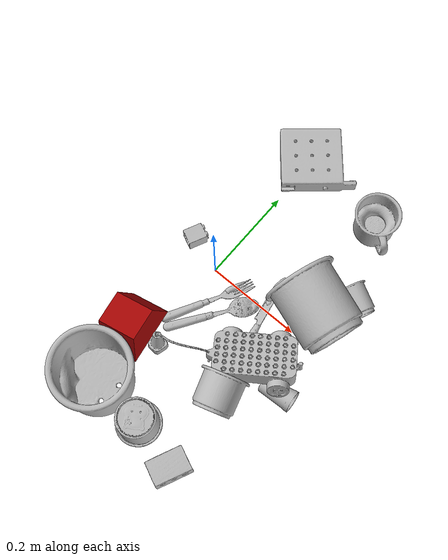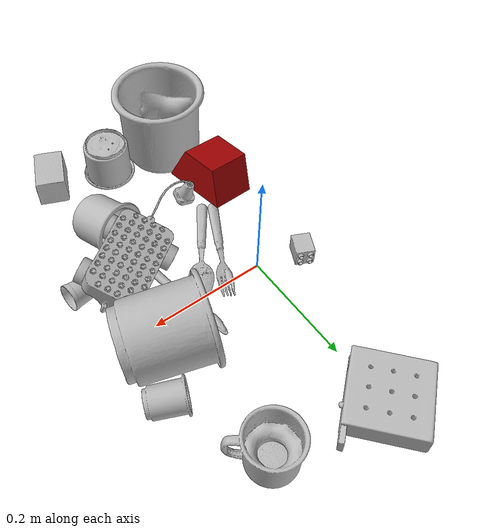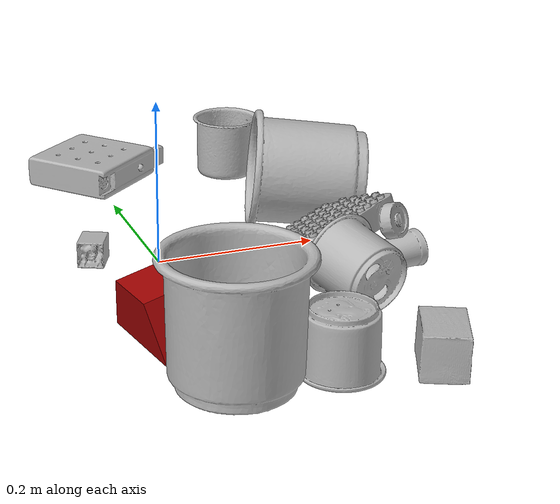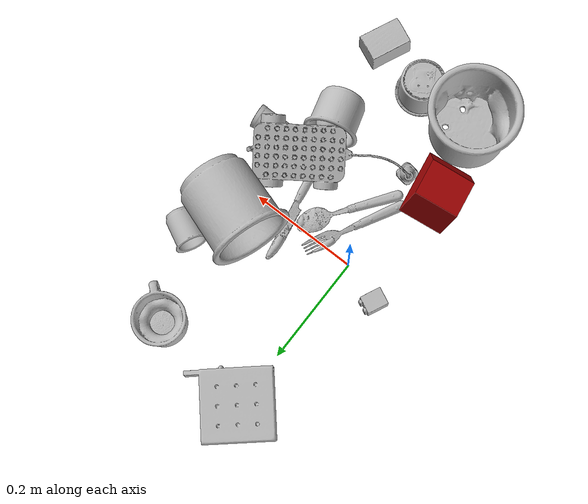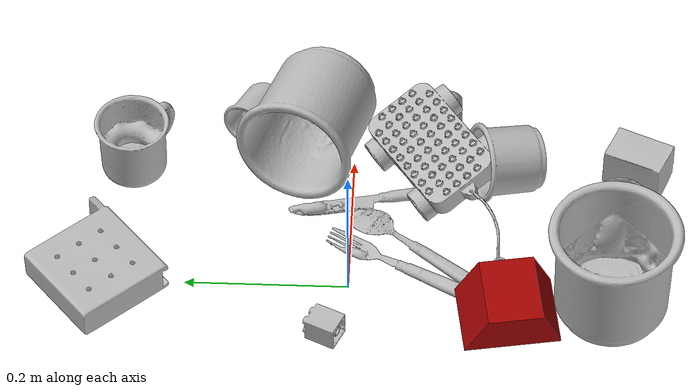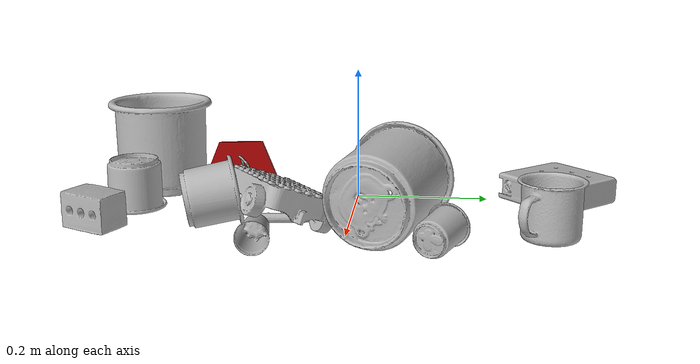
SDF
<sdf version="1.4">
  <world name="default">
    <light name="light1" type="point">
      <pose>0 0 1 0 0 0</pose>
      <diffuse>3 3 3 1</diffuse>
      <specular>3 3 3 1</specular>
    </light>
    <light name="light2" type="point">
      <pose>0 0.5 2 0 0 0</pose>
      <diffuse>1 1 1 1</diffuse>
      <specular>1 1 1 1</specular>
    </light>
    <light name="light3" type="point">
      <pose>0 0.5 2 0 0 0</pose>
      <diffuse>3 3 3 1</diffuse>
      <specular>3 3 3 1</specular>
    </light>
    <scene>
      <ambient>0.7 0.7 0.7</ambient>
    </scene>
    <model name="cup1">
      <link name="link_cup1">
        <collision name="default">
          <geometry>
            <mesh>
              <uri>model://i_cups/collision_meshes/collision.obj</uri>
              <scale>1.0 1.0 1.0</scale>
            </mesh>
          </geometry>
          <surface>
            <friction>
              <ode>
                <mu>0.5</mu>
                <mu2>0.5</mu2>
              </ode>
            </friction>
          <contact>
        <ode>
            <max_vel>0</max_vel>
            <min_depth>0.0001</min_depth>
            <kp>1e8</kp>
        </ode>
    </contact></surface>
        </collision>
        <visual name="default">
          <geometry>
            <mesh>
              <uri>model://i_cups/visual_meshes/visual.dae</uri>
              <scale>1.0 1.0 1.0</scale>
            </mesh>
          </geometry>
        </visual>
        <inertial>
          <mass>0.06118306145071983</mass>
          <pose>0.00011240330786677077 0.00016797454736661166 -0.0008579033892601728 -0.02898356853937009 -0.0398729445813228 -0.3459020996231002</pose>
          <inertia>
            <ixx>8.470886e-05</ixx>
            <iyy>8.5455235e-05</iyy>
            <izz>9.467588e-05</izz>
            <ixy>0</ixy>
            <ixz>0</ixz>
            <iyz>0</iyz>
          </inertia>
        </inertial>
      </link>
      <pose>0.1742555946111679 -0.19119006395339966 0.045974839478731155 -1.3533119203674542 0.7189179590360907 0.44686069858942584</pose>
    </model>
    <model name="silverware1">
      <link name="link_silverware1">
        <collision name="default">
          <geometry>
            <mesh>
              <uri>model://fork/collision_meshes/collision.obj</uri>
              <scale>1.0 1.0 1.0</scale>
            </mesh>
          </geometry>
          <surface>
            <friction>
              <ode>
                <mu>0.5</mu>
                <mu2>0.5</mu2>
              </ode>
            </friction>
          <contact>
        <ode>
            <max_vel>0</max_vel>
            <min_depth>0.0001</min_depth>
            <kp>1e8</kp>
        </ode>
    </contact></surface>
        </collision>
        <visual name="default">
          <geometry>
            <mesh>
              <uri>model://fork/visual_meshes/visual.dae</uri>
              <scale>1.0 1.0 1.0</scale>
            </mesh>
          </geometry>
        </visual>
        <inertial>
          <mass>0.031184576451778412</mass>
          <pose>-0.02957005426287651 0.00046588247641921043 0.0003218861820641905 -0.013551007459636681 -0.010977840933376642 0.014453907264632249</pose>
          <inertia>
            <ixx>1.0931959e-06</ixx>
            <iyy>8.1413935e-05</iyy>
            <izz>8.1902916e-05</izz>
            <ixy>0</ixy>
            <ixz>0</ixz>
            <iyz>0</iyz>
          </inertia>
        </inertial>
      </link>
      <pose>0.03302336856722832 -0.06125112622976303 0.005697718821465969 -0.17802686889973823 0.02535435743725021 1.0856482575754152</pose>
    </model>
    <model name="cup2">
      <link name="link_cup2">
        <collision name="default">
          <geometry>
            <mesh>
              <uri>model://cup_small/collision_meshes/collision.obj</uri>
              <scale>1.0 1.0 1.0</scale>
            </mesh>
          </geometry>
          <surface>
            <friction>
              <ode>
                <mu>0.5</mu>
                <mu2>0.5</mu2>
              </ode>
            </friction>
          <contact>
        <ode>
            <max_vel>0</max_vel>
            <min_depth>0.0001</min_depth>
            <kp>1e8</kp>
        </ode>
    </contact></surface>
        </collision>
        <visual name="default">
          <geometry>
            <mesh>
              <uri>model://cup_small/visual_meshes/visual.dae</uri>
              <scale>1.0 1.0 1.0</scale>
            </mesh>
          </geometry>
        </visual>
        <inertial>
          <mass>0.03407767415046692</mass>
          <pose>0.0001048250705935061 -0.00033778452780097723 -0.010742825455963612 -0.011493231776776816 -0.015280154496379641 -0.5058119732839097</pose>
          <inertia>
            <ixx>2.0064415e-05</ixx>
            <iyy>2.0167918e-05</iyy>
            <izz>9.059144e-06</izz>
            <ixy>0</ixy>
            <ixz>0</ixz>
            <iyz>0</iyz>
          </inertia>
        </inertial>
      </link>
      <pose>0.25632235407829285 -0.11410415172576904 0.02026931568980217 1.4313426765581765 -1.0202845865916228 1.8015491793434097</pose>
    </model>
    <model name="silverware2">
      <link name="link_silverware2">
        <collision name="default">
          <geometry>
            <mesh>
              <uri>model://spoon/collision_meshes/collision.obj</uri>
              <scale>1.0 1.0 1.0</scale>
            </mesh>
          </geometry>
          <surface>
            <friction>
              <ode>
                <mu>0.5</mu>
                <mu2>0.5</mu2>
              </ode>
            </friction>
          <contact>
        <ode>
            <max_vel>0</max_vel>
            <min_depth>0.0001</min_depth>
            <kp>1e8</kp>
        </ode>
    </contact></surface>
        </collision>
        <visual name="default">
          <geometry>
            <mesh>
              <uri>model://spoon/visual_meshes/visual.dae</uri>
              <scale>1.0 1.0 1.0</scale>
            </mesh>
          </geometry>
        </visual>
        <inertial>
          <mass>0.016614587977528572</mass>
          <pose>-0.005526317749172449 -0.0016034182626754045 -0.0007271657232195139 0.03521671066550848 -0.039065848782153245 0.0061506117821598484</pose>
          <inertia>
            <ixx>9.241303e-07</ixx>
            <iyy>6.321795e-05</iyy>
            <izz>6.367369e-05</izz>
            <ixy>0</ixy>
            <ixz>0</ixz>
            <iyz>0</iyz>
          </inertia>
        </inertial>
      </link>
      <pose>0.060312796384096146 -0.0788499116897583 0.010133782401680946 3.1049274108577882 -0.06197637865266806 0.9612691751548706</pose>
    </model>
    <model name="cup3">
      <link name="link_cup3">
        <collision name="default">
          <geometry>
            <mesh>
              <uri>model://mug/collision_meshes/collision.obj</uri>
              <scale>1.0 1.0 1.0</scale>
            </mesh>
          </geometry>
          <surface>
            <friction>
              <ode>
                <mu>0.5</mu>
                <mu2>0.5</mu2>
              </ode>
            </friction>
          <contact>
        <ode>
            <max_vel>0</max_vel>
            <min_depth>0.0001</min_depth>
            <kp>1e8</kp>
        </ode>
    </contact></surface>
        </collision>
        <visual name="default">
          <geometry>
            <mesh>
              <uri>model://mug/visual_meshes/visual.dae</uri>
              <scale>1.0 1.0 1.0</scale>
            </mesh>
          </geometry>
        </visual>
        <inertial>
          <mass>0.2187051922082901</mass>
          <pose>0.009571668691933155 0.0008143252925947309 -0.0109473317861557 -0.1298317614392908 0.08737757629698793 0.05507296169044089</pose>
          <inertia>
            <ixx>0.00021724429</ixx>
            <iyy>0.00024264908</iyy>
            <izz>0.00028062687</izz>
            <ixy>0</ixy>
            <ixz>0</ixz>
            <iyz>0</iyz>
          </inertia>
        </inertial>
      </link>
      <pose>0.19638314843177795 0.26887062191963196 0.04094903916120529 -8.892811109072792e-07 1.5702500083383604e-06 2.4368037427812577</pose>
    </model>
    <model name="silverware3">
      <link name="link_silverware3">
        <collision name="default">
          <geometry>
            <mesh>
              <uri>model://knife/collision_meshes/collision.obj</uri>
              <scale>1.0 1.0 1.0</scale>
            </mesh>
          </geometry>
          <surface>
            <friction>
              <ode>
                <mu>0.5</mu>
                <mu2>0.5</mu2>
              </ode>
            </friction>
          <contact>
        <ode>
            <max_vel>0</max_vel>
            <min_depth>0.0001</min_depth>
            <kp>1e8</kp>
        </ode>
    </contact></surface>
        </collision>
        <visual name="default">
          <geometry>
            <mesh>
              <uri>model://knife/visual_meshes/visual.dae</uri>
              <scale>1.0 1.0 1.0</scale>
            </mesh>
          </geometry>
        </visual>
        <inertial>
          <mass>0.02527560666203499</mass>
          <pose>-0.02378525398671627 0.0015275124460458755 5.062016498413868e-05 0.07305987488321217 0.01724841707462807 -0.007409821427235137</pose>
          <inertia>
            <ixx>7.174241e-07</ixx>
            <iyy>9.710476e-05</iyy>
            <izz>9.733581e-05</izz>
            <ixy>0</ixy>
            <ixz>0</ixz>
            <iyz>0</iyz>
          </inertia>
        </inertial>
      </link>
      <pose>0.13583868741989136 -0.027305282652378082 0.005810708738863468 2.889354054606812 0.02591460207233418 1.7600358473713342</pose>
    </model>
    <model name="cup4">
      <link name="link_cup4">
        <collision name="default">
          <geometry>
            <mesh>
              <uri>model://f_cups/collision_meshes/collision.obj</uri>
              <scale>2.0 2.0 2.0</scale>
            </mesh>
          </geometry>
          <surface>
            <friction>
              <ode>
                <mu>0.5</mu>
                <mu2>0.5</mu2>
              </ode>
            </friction>
          <contact>
        <ode>
            <max_vel>0</max_vel>
            <min_depth>0.0001</min_depth>
            <kp>1e8</kp>
        </ode>
    </contact></surface>
        </collision>
        <visual name="default">
          <geometry>
            <mesh>
              <uri>model://f_cups/visual_meshes/visual.dae</uri>
              <scale>2.0 2.0 2.0</scale>
            </mesh>
          </geometry>
        </visual>
        <inertial>
          <mass>0.45639780163764954</mass>
          <pose>-0.006342936772853136 -0.0012480145087465644 -0.007311072666198015 0.7862311529960513 -0.2607925047248709 -0.18237200478465204</pose>
          <inertia>
            <ixx>0.0017161043</ixx>
            <iyy>0.0018002132</iyy>
            <izz>0.0018740727</izz>
            <ixy>0</ixy>
            <ixz>0</ixz>
            <iyz>0</iyz>
          </inertia>
        </inertial>
      </link>
      <pose>-0.01861448958516121 -0.31905901432037354 0.07261094450950623 5.060996989196341e-05 -2.376373477342469e-05 0.8102713660166986</pose>
    </model>
    <model name="cup41">
      <link name="link_cup41">
        <collision name="default">
          <geometry>
            <mesh>
              <uri>model://b_cups/collision_meshes/collision.obj</uri>
              <scale>1.0 1.0 1.0</scale>
            </mesh>
          </geometry>
          <surface>
            <friction>
              <ode>
                <mu>0.5</mu>
                <mu2>0.5</mu2>
              </ode>
            </friction>
          <contact>
        <ode>
            <max_vel>0</max_vel>
            <min_depth>0.0001</min_depth>
            <kp>1e8</kp>
        </ode>
    </contact></surface>
        </collision>
        <visual name="default">
          <geometry>
            <mesh>
              <uri>model://b_cups/visual_meshes/visual.dae</uri>
              <scale>1.0 1.0 1.0</scale>
            </mesh>
          </geometry>
        </visual>
        <inertial>
          <mass>0.02191556617617607</mass>
          <pose>0.0005182005115784705 0.0018058598507195711 -0.0013381809694692492 0.11356347292067202 0.038725069075056226 -0.34569439603942165</pose>
          <inertia>
            <ixx>1.4345273e-05</ixx>
            <iyy>1.4072923e-05</iyy>
            <izz>1.2071279e-05</izz>
            <ixy>0</ixy>
            <ixz>0</ixz>
            <iyz>0</iyz>
          </inertia>
        </inertial>
      </link>
      <pose>0.2606373429298401 0.12633046507835388 0.027782615274190903 -1.4749452081498804 0.15387823740451712 1.1461817161312304</pose>
    </model>
    <model name="cup5">
      <link name="link_cup5">
        <collision name="default">
          <geometry>
            <mesh>
              <uri>model://e_cups/collision_meshes/collision.obj</uri>
              <scale>2.0 2.0 2.0</scale>
            </mesh>
          </geometry>
          <surface>
            <friction>
              <ode>
                <mu>0.5</mu>
                <mu2>0.5</mu2>
              </ode>
            </friction>
          <contact>
        <ode>
            <max_vel>0</max_vel>
            <min_depth>0.0001</min_depth>
            <kp>1e8</kp>
        </ode>
    </contact></surface>
        </collision>
        <visual name="default">
          <geometry>
            <mesh>
              <uri>model://e_cups/visual_meshes/visual.dae</uri>
              <scale>2.0 2.0 2.0</scale>
            </mesh>
          </geometry>
        </visual>
        <inertial>
          <mass>0.30448246002197266</mass>
          <pose>0.0022711469791829586 0.005759572610259056 -0.00776594178751111 0.6952384510578399 0.08767941436067322 -0.5235260729612989</pose>
          <inertia>
            <ixx>0.0010739095</ixx>
            <iyy>0.001122389</iyy>
            <izz>0.0010267813</izz>
            <ixy>0</ixy>
            <ixz>0</ixz>
            <iyz>0</iyz>
          </inertia>
        </inertial>
      </link>
      <pose>0.21389997005462646 0.05313180759549141 0.07028847932815552 1.4613892289078432 0.596460200149914 -1.9528110096522548</pose>
    </model>
    <model name="cup51">
      <link name="link_cup51">
        <collision name="default">
          <geometry>
            <mesh>
              <uri>model://h_cups/collision_meshes/collision.obj</uri>
              <scale>1.0 1.0 1.0</scale>
            </mesh>
          </geometry>
          <surface>
            <friction>
              <ode>
                <mu>0.5</mu>
                <mu2>0.5</mu2>
              </ode>
            </friction>
          <contact>
        <ode>
            <max_vel>0</max_vel>
            <min_depth>0.0001</min_depth>
            <kp>1e8</kp>
        </ode>
    </contact></surface>
        </collision>
        <visual name="default">
          <geometry>
            <mesh>
              <uri>model://h_cups/visual_meshes/visual.dae</uri>
              <scale>1.0 1.0 1.0</scale>
            </mesh>
          </geometry>
        </visual>
        <inertial>
          <mass>0.042455922812223434</mass>
          <pose>-2.703044083318673e-05 0.00023018660431262106 -0.0018405403243377805 -0.024361995264993386 0.06545231449212868 0.1288536550905752</pose>
          <inertia>
            <ixx>5.4829856e-05</ixx>
            <iyy>5.4175573e-05</iyy>
            <izz>5.7501496e-05</izz>
            <ixy>0</ixy>
            <ixz>0</ixz>
            <iyz>0</iyz>
          </inertia>
        </inertial>
      </link>
      <pose>0.09078297764062881 -0.32879185676574707 0.03753001242876053 -3.1415918464788235 4.4203251388146553e-07 -0.8886980864953475</pose>
    </model>
    <model name="toy1">
      <link name="link_toy1">
        <collision name="default">
          <geometry>
            <mesh>
              <uri>model://f_lego_duplo/collision_meshes/collision.obj</uri>
              <scale>1.0 1.0 1.0</scale>
            </mesh>
          </geometry>
          <surface>
            <friction>
              <ode>
                <mu>0.5</mu>
                <mu2>0.5</mu2>
              </ode>
            </friction>
          <contact>
        <ode>
            <max_vel>0</max_vel>
            <min_depth>0.0001</min_depth>
            <kp>1e8</kp>
        </ode>
    </contact></surface>
        </collision>
        <visual name="default">
          <geometry>
            <mesh>
              <uri>model://f_lego_duplo/visual_meshes/visual.dae</uri>
              <scale>1.0 1.0 1.0</scale>
            </mesh>
          </geometry>
        </visual>
        <inertial>
          <mass>0.02241816557943821</mass>
          <pose>2.3694117771810852e-05 0.0001339316659141332 0.0018837875686585903 0.029838520561624126 -0.014425134948969536 -0.6756620822172864</pose>
          <inertia>
            <ixx>4.7370827e-06</ixx>
            <iyy>4.779284e-06</iyy>
            <izz>4.1119874e-06</izz>
            <ixy>0</ixy>
            <ixz>0</ixz>
            <iyz>0</iyz>
          </inertia>
        </inertial>
      </link>
      <pose>-0.073667511343956 0.02694128081202507 0.016207218170166016 1.5789915723460484 0.00014549487576907065 2.7114084641934335</pose>
    </model>
    <model name="toy2">
      <link name="link_toy2">
        <collision name="default">
          <geometry>
            <mesh>
              <uri>model://nine_hole_peg_test/collision_meshes/collision.obj</uri>
              <scale>1.0 1.0 1.0</scale>
            </mesh>
          </geometry>
          <surface>
            <friction>
              <ode>
                <mu>0.5</mu>
                <mu2>0.5</mu2>
              </ode>
            </friction>
          <contact>
        <ode>
            <max_vel>0</max_vel>
            <min_depth>0.0001</min_depth>
            <kp>1e8</kp>
        </ode>
    </contact></surface>
        </collision>
        <visual name="default">
          <geometry>
            <mesh>
              <uri>model://nine_hole_peg_test/visual_meshes/visual.dae</uri>
              <scale>1.0 1.0 1.0</scale>
            </mesh>
          </geometry>
        </visual>
        <inertial>
          <mass>0.9336897134780884</mass>
          <pose>-0.004617386497557163 -0.009647615253925323 2.6460686058271676e-05 -0.0014666796876693252 0.0007194179493738156 -0.6342417556307235</pose>
          <inertia>
            <ixx>0.0014599775</ixx>
            <iyy>0.0013631656</iyy>
            <izz>0.0025583105</izz>
            <ixy>0</ixy>
            <ixz>0</ixz>
            <iyz>0</iyz>
          </inertia>
        </inertial>
      </link>
      <pose>0.009869437664747238 0.3095649182796478 0.020771004259586334 2.7267620744444205e-08 -3.219305756822697e-09 -0.8497996450380523</pose>
    </model>
    <model name="toy3">
      <link name="link_toy3">
        <collision name="default">
          <geometry>
            <mesh>
              <uri>model://prism/collision_meshes/collision.obj</uri>
              <scale>1.0 1.0 1.0</scale>
            </mesh>
          </geometry>
          <surface>
            <friction>
              <ode>
                <mu>0.5</mu>
                <mu2>0.5</mu2>
              </ode>
            </friction>
          <contact>
        <ode>
            <max_vel>0</max_vel>
            <min_depth>0.0001</min_depth>
            <kp>1e8</kp>
        </ode>
    </contact></surface>
        </collision>
        <visual name="default">
          <geometry>
            <mesh>
              <uri>model://prism/visual_meshes/visual.dae</uri>
              <scale>1.0 1.0 1.0</scale>
            </mesh>
          </geometry>
        </visual>
        <inertial>
          <mass>0.45664992928504944</mass>
          <pose>-9.85359656624496e-05 -4.96157269935793e-07 -0.0033869100734591484 0.0 0.006559178903460961 0.0</pose>
          <inertia>
            <ixx>0.0004121209</ixx>
            <iyy>0.00049805344</iyy>
            <izz>0.0006100559</izz>
            <ixy>0</ixy>
            <ixz>0</ixz>
            <iyz>0</iyz>
          </inertia>
        </inertial>
      </link>
      <pose>-0.0480872206389904 -0.1957455277442932 0.039949312806129456 -0.2021666168905024 -2.625627949198178e-06 1.7394633315834187</pose>
    </model>
    <model name="toy4">
      <link name="link_toy4">
        <collision name="default">
          <geometry>
            <mesh>
              <uri>model://g_lego_duplo/collision_meshes/collision.obj</uri>
              <scale>1.0 1.0 1.0</scale>
            </mesh>
          </geometry>
          <surface>
            <friction>
              <ode>
                <mu>0.5</mu>
                <mu2>0.5</mu2>
              </ode>
            </friction>
          <contact>
        <ode>
            <max_vel>0</max_vel>
            <min_depth>0.0001</min_depth>
            <kp>1e8</kp>
        </ode>
    </contact></surface>
        </collision>
        <visual name="default">
          <geometry>
            <mesh>
              <uri>model://g_lego_duplo/visual_meshes/visual.dae</uri>
              <scale>1.0 1.0 1.0</scale>
            </mesh>
          </geometry>
        </visual>
        <inertial>
          <mass>0.39620378613471985</mass>
          <pose>-0.05004769191145897 0.0017554654041305184 0.003880677744746208 0.010963058510667364 0.03810828654928447 -0.09653021192595126</pose>
          <inertia>
            <ixx>0.0005741041</ixx>
            <iyy>0.0017357017</iyy>
            <izz>0.0021714251</izz>
            <ixy>0</ixy>
            <ixz>0</ixz>
            <iyz>0</iyz>
          </inertia>
        </inertial>
      </link>
      <pose>0.13368016481399536 -0.12991242110729218 0.047338444739580154 0.3597368115807281 0.02176049481870708 -2.528140559787996</pose>
    </model>
    <model name="toy5">
      <link name="link_toy5">
        <collision name="default">
          <geometry>
            <mesh>
              <uri>model://foam_brick/collision_meshes/collision.obj</uri>
              <scale>1.0 1.0 1.0</scale>
            </mesh>
          </geometry>
          <surface>
            <friction>
              <ode>
                <mu>0.5</mu>
                <mu2>0.5</mu2>
              </ode>
            </friction>
          <contact>
        <ode>
            <max_vel>0</max_vel>
            <min_depth>0.0001</min_depth>
            <kp>1e8</kp>
        </ode>
    </contact></surface>
        </collision>
        <visual name="default">
          <geometry>
            <mesh>
              <uri>model://foam_brick/visual_meshes/visual.dae</uri>
              <scale>1.0 1.0 1.0</scale>
            </mesh>
          </geometry>
        </visual>
        <inertial>
          <mass>0.10564772039651871</mass>
          <pose>-0.00025224717683158815 0.00034584361128509045 -0.00025321010616607964 -0.29402271699624904 0.017274444128295662 -0.0007449905040366932</pose>
          <inertia>
            <ixx>4.6148893e-05</ixx>
            <iyy>7.367908e-05</iyy>
            <izz>7.4615455e-05</izz>
            <ixy>0</ixy>
            <ixz>0</ixz>
            <iyz>0</iyz>
          </inertia>
        </inertial>
      </link>
      <pose>0.1925935000181198 -0.35449057817459106 0.02626493014395237 -1.581934056548504 -0.012728842912694204 -1.9942784658599553</pose>
    </model>
  <physics type="ode">
      <max_contacts>50</max_contacts>
      <ode>
        <solver>
          <type>quick</type>
          <iters>75</iters>
        </solver>
        <constraints>
          <contact_max_correcting_vel>0</contact_max_correcting_vel>
          <contact_surface_layer>0</contact_surface_layer>
        </constraints>
      </ode>
    </physics></world>
</sdf>
